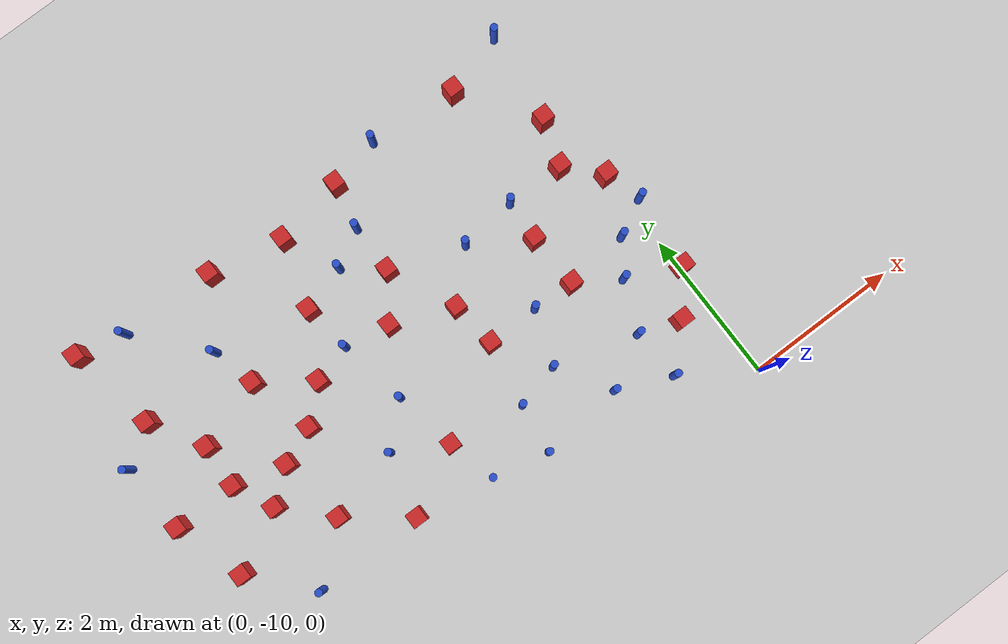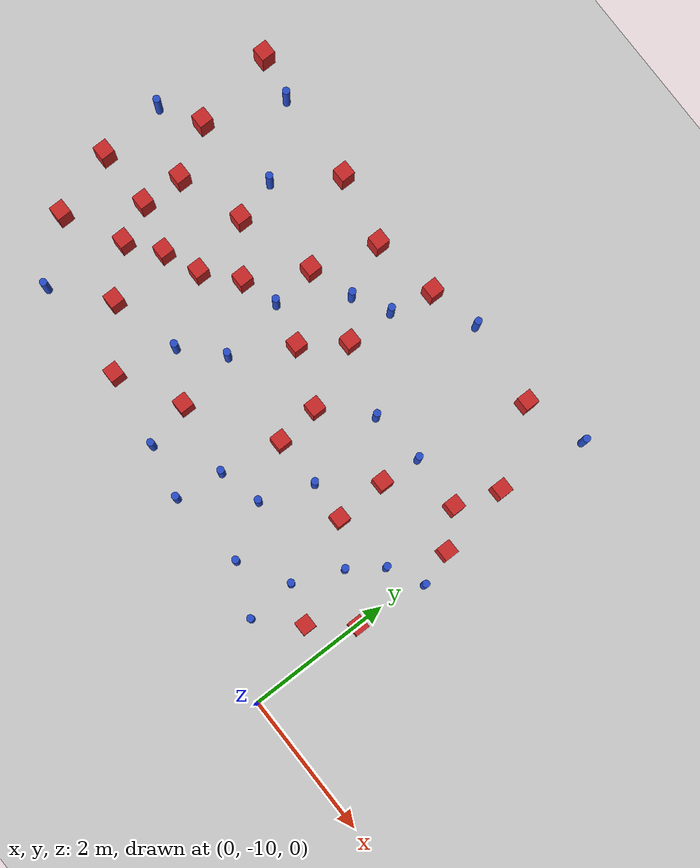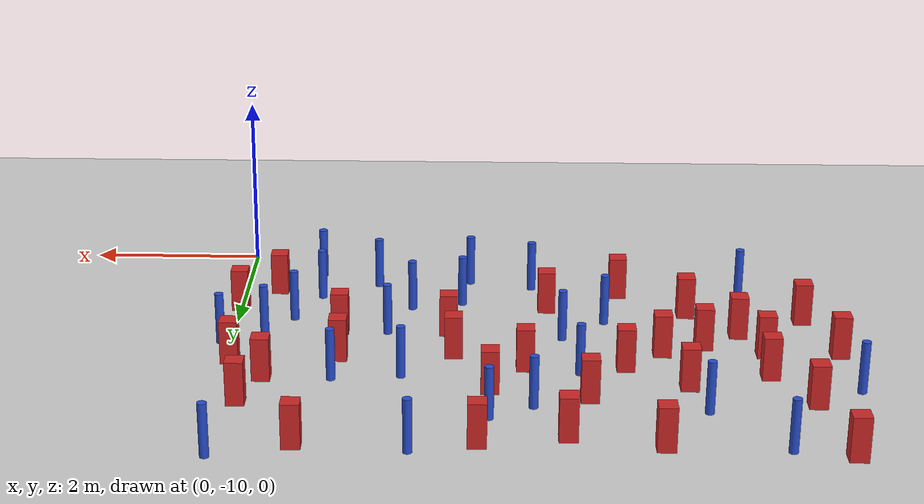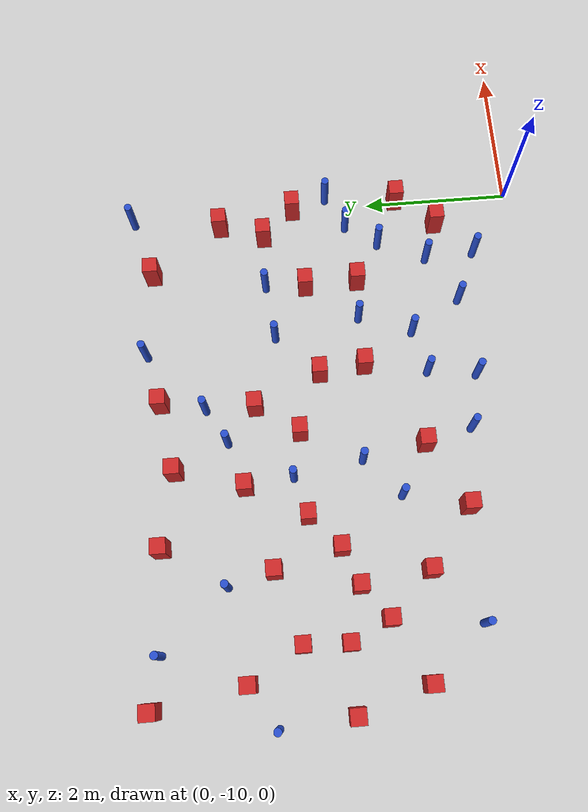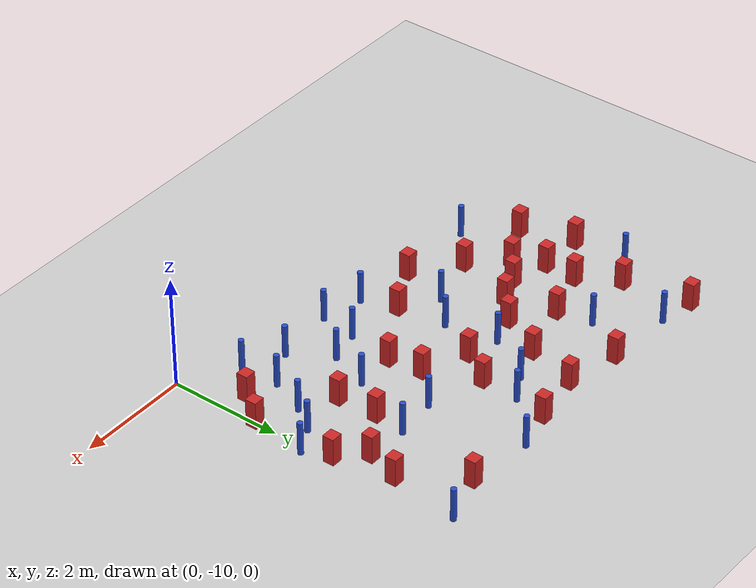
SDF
<sdf version="1.6">
 <world name="default">
  <model name="ground_plane">
   <static>1</static>
   <link name="link">
    <collision name="collision">
     <geometry><plane><normal>0 0 1</normal><size>100 100</size></plane></geometry>
     <surface><friction><ode><mu>100</mu><mu2>50</mu2></ode></friction></surface>
    </collision>
    <visual name="visual">
     <cast_shadows>0</cast_shadows>
     <geometry><plane><normal>0 0 1</normal><size>100 100</size></plane></geometry>
     <material>
      <ambient>1.0 1.0 1.0 1.0</ambient>
      <diffuse>0.8 0.8 0.8 1.0</diffuse>
      <specular>0.01 0.01 0.01 1.000000</specular>
     </material>
    </visual>
   </link>
  </model>
  <model name="square_post_obstacle0">
   <static>true</static>
   <pose>-4.84139513714 -7.20831380337 1.91545236811e-07 -7.35059704564e-06 1.12565212e-07 2.39332434364e-05</pose>
   <link name="link">
    <pose>0 0 0.25 0 -0 0</pose>
    <inertial>
     <mass>100</mass>
     <inertia>
      <ixx>0.166667</ixx>
      <ixy>0</ixy>
      <ixz>0</ixz>
      <iyy>0.166667</iyy>
      <iyz>0</iyz>
      <izz>0.166667</izz>
     </inertia>
    </inertial>
    <collision name="collision"><geometry><box><size>.2 .2 .5</size></box></geometry></collision>
    <visual name="visual">
     <geometry><box><size>.2 .2 .5</size></box></geometry>
     <material>
      <script><name>Gazebo/Red</name><uri>file://media/materials/scripts/gazebo.material</uri></script>
     </material>
    </visual>
   </link>
  </model>
  <model name="pole_obstacle5">
   <static>true</static>
   <pose>0.122949618558 -7.40408412698 7.38925637345e-09 -8.47170692799e-08 1.2497676504e-08 -1.74513093019e-07</pose>
   <link name="link">
    <pose>0 0 0.3 0 -0 0</pose>
    <inertial>
     <mass>1</mass>
     <inertia><ixx>0.145833</ixx><ixy>0</ixy><ixz>0</ixz><iyy>0.145833</iyy><iyz>0</iyz><izz>0.125</izz></inertia>
    </inertial>
    <collision name="collision">
     <geometry><cylinder><radius>0.05</radius><length>.6</length></cylinder></geometry>
    </collision>
    <visual name="visual">
     <geometry><cylinder><radius>0.05</radius><length>.6</length></cylinder></geometry>
     <material>
      <script><name>Gazebo/Blue</name><uri>file://media/materials/scripts/gazebo.material</uri></script>
     </material>
    </visual>
   </link>
  </model>
  <model name="pole_obstacle13">
   <static>true</static>
   <pose>-3.74267223954 -7.58555158049 7.38925637345e-09 -8.47170692794e-08 1.24976764468e-08 -1.7451309304e-07</pose>
   <link name="link">
    <pose>0 0 0.3 0 -0 0</pose>
    <inertial>
     <mass>1</mass>
     <inertia><ixx>0.145833</ixx><ixy>0</ixy><ixz>0</ixz><iyy>0.145833</iyy><iyz>0</iyz><izz>0.125</izz></inertia>
    </inertial>
    <collision name="collision">
     <geometry><cylinder><radius>0.05</radius><length>.6</length></cylinder></geometry>
    </collision>
    <visual name="visual">
     <geometry><cylinder><radius>0.05</radius><length>.6</length></cylinder></geometry>
     <material>
      <script><name>Gazebo/Blue</name><uri>file://media/materials/scripts/gazebo.material</uri></script>
     </material>
    </visual>
   </link>
  </model>
  <model name="pole_obstacle22">
   <static>true</static>
   <pose>-2.91029246065 -5.57500452506 7.38925637345e-09 -8.47170692798e-08 1.24976765033e-08 -1.74513093019e-07</pose>
   <link name="link">
    <pose>0 0 0.3 0 -0 0</pose>
    <inertial>
     <mass>1</mass>
     <inertia><ixx>0.145833</ixx><ixy>0</ixy><ixz>0</ixz><iyy>0.145833</iyy><iyz>0</iyz><izz>0.125</izz></inertia>
    </inertial>
    <collision name="collision">
     <geometry><cylinder><radius>0.05</radius><length>.6</length></cylinder></geometry>
    </collision>
    <visual name="visual">
     <geometry><cylinder><radius>0.05</radius><length>.6</length></cylinder></geometry>
     <material>
      <script><name>Gazebo/Blue</name><uri>file://media/materials/scripts/gazebo.material</uri></script>
     </material>
    </visual>
   </link>
  </model>
  <model name="pole_obstacle23">
   <static>true</static>
   <pose>-0.890442767899 -9.41216374775 7.38925637345e-09 -8.47170692797e-08 1.249767648e-08 -1.74513093032e-07</pose>
   <link name="link">
    <pose>0 0 0.3 0 -0 0</pose>
    <inertial>
     <mass>1</mass>
     <inertia><ixx>0.145833</ixx><ixy>0</ixy><ixz>0</ixz><iyy>0.145833</iyy><iyz>0</iyz><izz>0.125</izz></inertia>
    </inertial>
    <collision name="collision">
     <geometry><cylinder><radius>0.05</radius><length>.6</length></cylinder></geometry>
    </collision>
    <visual name="visual">
     <geometry><cylinder><radius>0.05</radius><length>.6</length></cylinder></geometry>
     <material>
      <script><name>Gazebo/Blue</name><uri>file://media/materials/scripts/gazebo.material</uri></script>
     </material>
    </visual>
   </link>
  </model>
  <model name="square_post_obstacle21">
   <static>true</static>
   <pose>-6.37459272329 -5.96504815484 1.91545236811e-07 -7.35059704564e-06 1.12565212e-07 2.39332434364e-05</pose>
   <link name="link">
    <pose>0 0 0.25 0 -0 0</pose>
    <inertial>
     <mass>100</mass>
     <inertia>
      <ixx>0.166667</ixx>
      <ixy>0</ixy>
      <ixz>0</ixz>
      <iyy>0.166667</iyy>
      <iyz>0</iyz>
      <izz>0.166667</izz>
     </inertia>
    </inertial>
    <collision name="collision"><geometry><box><size>.2 .2 .5</size></box></geometry></collision>
    <visual name="visual">
     <geometry><box><size>.2 .2 .5</size></box></geometry>
     <material>
      <script><name>Gazebo/Red</name><uri>file://media/materials/scripts/gazebo.material</uri></script>
     </material>
    </visual>
   </link>
  </model>
  <model name="square_post_obstacle25">
   <static>true</static>
   <pose>-0.234538740479 -5.88978600443 1.91545236811e-07 -7.35059704564e-06 1.12565212e-07 2.39332434364e-05</pose>
   <link name="link">
    <pose>0 0 0.25 0 -0 0</pose>
    <inertial>
     <mass>100</mass>
     <inertia>
      <ixx>0.166667</ixx>
      <ixy>0</ixy>
      <ixz>0</ixz>
      <iyy>0.166667</iyy>
      <iyz>0</iyz>
      <izz>0.166667</izz>
     </inertia>
    </inertial>
    <collision name="collision"><geometry><box><size>.2 .2 .5</size></box></geometry></collision>
    <visual name="visual">
     <geometry><box><size>.2 .2 .5</size></box></geometry>
     <material>
      <script><name>Gazebo/Red</name><uri>file://media/materials/scripts/gazebo.material</uri></script>
     </material>
    </visual>
   </link>
  </model>
  <model name="pole_obstacle41">
   <static>true</static>
   <pose>-4.24276066997 -8.04944126712 7.38925637345e-09 -8.47170692796e-08 1.24976764734e-08 -1.74513093037e-07</pose>
   <link name="link">
    <pose>0 0 0.3 0 -0 0</pose>
    <inertial>
     <mass>1</mass>
     <inertia><ixx>0.145833</ixx><ixy>0</ixy><ixz>0</ixz><iyy>0.145833</iyy><iyz>0</iyz><izz>0.125</izz></inertia>
    </inertial>
    <collision name="collision">
     <geometry><cylinder><radius>0.05</radius><length>.6</length></cylinder></geometry>
    </collision>
    <visual name="visual">
     <geometry><cylinder><radius>0.05</radius><length>.6</length></cylinder></geometry>
     <material>
      <script><name>Gazebo/Blue</name><uri>file://media/materials/scripts/gazebo.material</uri></script>
     </material>
    </visual>
   </link>
  </model>
  <model name="pole_obstacle42">
   <static>true</static>
   <pose>-3.42319173039 -9.05376621571 7.38925637345e-09 -8.47170692793e-08 1.24976764408e-08 -1.74513093041e-07</pose>
   <link name="link">
    <pose>0 0 0.3 0 -0 0</pose>
    <inertial>
     <mass>1</mass>
     <inertia><ixx>0.145833</ixx><ixy>0</ixy><ixz>0</ixz><iyy>0.145833</iyy><iyz>0</iyz><izz>0.125</izz></inertia>
    </inertial>
    <collision name="collision">
     <geometry><cylinder><radius>0.05</radius><length>.6</length></cylinder></geometry>
    </collision>
    <visual name="visual">
     <geometry><cylinder><radius>0.05</radius><length>.6</length></cylinder></geometry>
     <material>
      <script><name>Gazebo/Blue</name><uri>file://media/materials/scripts/gazebo.material</uri></script>
     </material>
    </visual>
   </link>
  </model>
  <model name="square_post_obstacle34">
   <static>true</static>
   <pose>-5.74695221369 -7.73323091763 1.91545236811e-07 -7.35059704564e-06 1.12565212e-07 2.39332434364e-05</pose>
   <link name="link">
    <pose>0 0 0.25 0 -0 0</pose>
    <inertial>
     <mass>100</mass>
     <inertia>
      <ixx>0.166667</ixx>
      <ixy>0</ixy>
      <ixz>0</ixz>
      <iyy>0.166667</iyy>
      <iyz>0</iyz>
      <izz>0.166667</izz>
     </inertia>
    </inertial>
    <collision name="collision"><geometry><box><size>.2 .2 .5</size></box></geometry></collision>
    <visual name="visual">
     <geometry><box><size>.2 .2 .5</size></box></geometry>
     <material>
      <script><name>Gazebo/Red</name><uri>file://media/materials/scripts/gazebo.material</uri></script>
     </material>
    </visual>
   </link>
  </model>
  <model name="pole_obstacle44">
   <static>true</static>
   <pose>-1.58929390108 -9.11141644523 7.38925637345e-09 -8.47170692798e-08 1.24976764881e-08 -1.74513093027e-07</pose>
   <link name="link">
    <pose>0 0 0.3 0 -0 0</pose>
    <inertial>
     <mass>1</mass>
     <inertia><ixx>0.145833</ixx><ixy>0</ixy><ixz>0</ixz><iyy>0.145833</iyy><iyz>0</iyz><izz>0.125</izz></inertia>
    </inertial>
    <collision name="collision">
     <geometry><cylinder><radius>0.05</radius><length>.6</length></cylinder></geometry>
    </collision>
    <visual name="visual">
     <geometry><cylinder><radius>0.05</radius><length>.6</length></cylinder></geometry>
     <material>
      <script><name>Gazebo/Blue</name><uri>file://media/materials/scripts/gazebo.material</uri></script>
     </material>
    </visual>
   </link>
  </model>
  <model name="square_post_obstacle46">
   <static>true</static>
   <pose>-1.23906364072 -7.02247748256 1.91545236811e-07 -7.35059704564e-06 1.12565212e-07 2.39332434364e-05</pose>
   <link name="link">
    <pose>0 0 0.25 0 -0 0</pose>
    <inertial>
     <mass>100</mass>
     <inertia>
      <ixx>0.166667</ixx>
      <ixy>0</ixy>
      <ixz>0</ixz>
      <iyy>0.166667</iyy>
      <iyz>0</iyz>
      <izz>0.166667</izz>
     </inertia>
    </inertial>
    <collision name="collision"><geometry><box><size>.2 .2 .5</size></box></geometry></collision>
    <visual name="visual">
     <geometry><box><size>.2 .2 .5</size></box></geometry>
     <material>
      <script><name>Gazebo/Red</name><uri>file://media/materials/scripts/gazebo.material</uri></script>
     </material>
    </visual>
   </link>
  </model>
  <model name="square_post_obstacle49">
   <static>true</static>
   <pose>-5.06486607134 -6.35280239748 1.91545236811e-07 -7.35059704564e-06 1.12565212e-07 2.39332434364e-05</pose>
   <link name="link">
    <pose>0 0 0.25 0 -0 0</pose>
    <inertial>
     <mass>100</mass>
     <inertia>
      <ixx>0.166667</ixx>
      <ixy>0</ixy>
      <ixz>0</ixz>
      <iyy>0.166667</iyy>
      <iyz>0</iyz>
      <izz>0.166667</izz>
     </inertia>
    </inertial>
    <collision name="collision"><geometry><box><size>.2 .2 .5</size></box></geometry></collision>
    <visual name="visual">
     <geometry><box><size>.2 .2 .5</size></box></geometry>
     <material>
      <script><name>Gazebo/Red</name><uri>file://media/materials/scripts/gazebo.material</uri></script>
     </material>
    </visual>
   </link>
  </model>
  <model name="pole_obstacle66">
   <static>true</static>
   <pose>-2.60039056792 -8.56902993173 7.38925637345e-09 -8.47170692793e-08 1.24976764408e-08 -1.74513093041e-07</pose>
   <link name="link">
    <pose>0 0 0.3 0 -0 0</pose>
    <inertial>
     <mass>1</mass>
     <inertia><ixx>0.145833</ixx><ixy>0</ixy><ixz>0</ixz><iyy>0.145833</iyy><iyz>0</iyz><izz>0.125</izz></inertia>
    </inertial>
    <collision name="collision">
     <geometry><cylinder><radius>0.05</radius><length>.6</length></cylinder></geometry>
    </collision>
    <visual name="visual">
     <geometry><cylinder><radius>0.05</radius><length>.6</length></cylinder></geometry>
     <material>
      <script><name>Gazebo/Blue</name><uri>file://media/materials/scripts/gazebo.material</uri></script>
     </material>
    </visual>
   </link>
  </model>
  <model name="square_post_obstacle53">
   <static>true</static>
   <pose>-5.20208092043 -8.29713924937 1.91545236811e-07 -7.35059704564e-06 1.12565212e-07 2.39332434364e-05</pose>
   <link name="link">
    <pose>0 0 0.25 0 -0 0</pose>
    <inertial>
     <mass>100</mass>
     <inertia>
      <ixx>0.166667</ixx>
      <ixy>0</ixy>
      <ixz>0</ixz>
      <iyy>0.166667</iyy>
      <iyz>0</iyz>
      <izz>0.166667</izz>
     </inertia>
    </inertial>
    <collision name="collision"><geometry><box><size>.2 .2 .5</size></box></geometry></collision>
    <visual name="visual">
     <geometry><box><size>.2 .2 .5</size></box></geometry>
     <material>
      <script><name>Gazebo/Red</name><uri>file://media/materials/scripts/gazebo.material</uri></script>
     </material>
    </visual>
   </link>
  </model>
  <model name="square_post_obstacle62">
   <static>true</static>
   <pose>-6.58231786967 -4.79509380985 1.91545236811e-07 -7.35059704564e-06 1.12565212e-07 2.39332434364e-05</pose>
   <link name="link">
    <pose>0 0 0.25 0 -0 0</pose>
    <inertial>
     <mass>100</mass>
     <inertia>
      <ixx>0.166667</ixx>
      <ixy>0</ixy>
      <ixz>0</ixz>
      <iyy>0.166667</iyy>
      <iyz>0</iyz>
      <izz>0.166667</izz>
     </inertia>
    </inertial>
    <collision name="collision"><geometry><box><size>.2 .2 .5</size></box></geometry></collision>
    <visual name="visual">
     <geometry><box><size>.2 .2 .5</size></box></geometry>
     <material>
      <script><name>Gazebo/Red</name><uri>file://media/materials/scripts/gazebo.material</uri></script>
     </material>
    </visual>
   </link>
  </model>
  <model name="pole_obstacle74">
   <static>true</static>
   <pose>-1.95495482036 -6.55999905557 7.38925637345e-09 -8.47170692799e-08 1.2497676507e-08 -1.74513093016e-07</pose>
   <link name="link">
    <pose>0 0 0.3 0 -0 0</pose>
    <inertial>
     <mass>1</mass>
     <inertia><ixx>0.145833</ixx><ixy>0</ixy><ixz>0</ixz><iyy>0.145833</iyy><iyz>0</iyz><izz>0.125</izz></inertia>
    </inertial>
    <collision name="collision">
     <geometry><cylinder><radius>0.05</radius><length>.6</length></cylinder></geometry>
    </collision>
    <visual name="visual">
     <geometry><cylinder><radius>0.05</radius><length>.6</length></cylinder></geometry>
     <material>
      <script><name>Gazebo/Blue</name><uri>file://media/materials/scripts/gazebo.material</uri></script>
     </material>
    </visual>
   </link>
  </model>
  <model name="square_post_obstacle65">
   <static>true</static>
   <pose>-3.58632804075 -8.41804204437 1.91545236811e-07 -7.35059704564e-06 1.12565212e-07 2.39332434364e-05</pose>
   <link name="link">
    <pose>0 0 0.25 0 -0 0</pose>
    <inertial>
     <mass>100</mass>
     <inertia>
      <ixx>0.166667</ixx>
      <ixy>0</ixy>
      <ixz>0</ixz>
      <iyy>0.166667</iyy>
      <iyz>0</iyz>
      <izz>0.166667</izz>
     </inertia>
    </inertial>
    <collision name="collision"><geometry><box><size>.2 .2 .5</size></box></geometry></collision>
    <visual name="visual">
     <geometry><box><size>.2 .2 .5</size></box></geometry>
     <material>
      <script><name>Gazebo/Red</name><uri>file://media/materials/scripts/gazebo.material</uri></script>
     </material>
    </visual>
   </link>
  </model>
  <model name="pole_obstacle78">
   <static>true</static>
   <pose>-0.0718494306639 -4.6658064263 7.38925637345e-09 -8.471706928e-08 1.24976765084e-08 -1.74513093017e-07</pose>
   <link name="link">
    <pose>0 0 0.3 0 -0 0</pose>
    <inertial>
     <mass>1</mass>
     <inertia><ixx>0.145833</ixx><ixy>0</ixy><ixz>0</ixz><iyy>0.145833</iyy><iyz>0</iyz><izz>0.125</izz></inertia>
    </inertial>
    <collision name="collision">
     <geometry><cylinder><radius>0.05</radius><length>.6</length></cylinder></geometry>
    </collision>
    <visual name="visual">
     <geometry><cylinder><radius>0.05</radius><length>.6</length></cylinder></geometry>
     <material>
      <script><name>Gazebo/Blue</name><uri>file://media/materials/scripts/gazebo.material</uri></script>
     </material>
    </visual>
   </link>
  </model>
  <model name="square_post_obstacle71">
   <static>true</static>
   <pose>-6.81924303917 -7.22291895995 1.91545236811e-07 -7.35059704564e-06 1.12565212e-07 2.39332434364e-05</pose>
   <link name="link">
    <pose>0 0 0.25 0 -0 0</pose>
    <inertial>
     <mass>100</mass>
     <inertia>
      <ixx>0.166667</ixx>
      <ixy>0</ixy>
      <ixz>0</ixz>
      <iyy>0.166667</iyy>
      <iyz>0</iyz>
      <izz>0.166667</izz>
     </inertia>
    </inertial>
    <collision name="collision"><geometry><box><size>.2 .2 .5</size></box></geometry></collision>
    <visual name="visual">
     <geometry><box><size>.2 .2 .5</size></box></geometry>
     <material>
      <script><name>Gazebo/Red</name><uri>file://media/materials/scripts/gazebo.material</uri></script>
     </material>
    </visual>
   </link>
  </model>
  <model name="pole_obstacle83">
   <static>true</static>
   <pose>-2.0945225241 -4.81393313526 7.38925637345e-09 -8.47170692798e-08 1.24976765033e-08 -1.74513093019e-07</pose>
   <link name="link">
    <pose>0 0 0.3 0 -0 0</pose>
    <inertial>
     <mass>1</mass>
     <inertia><ixx>0.145833</ixx><ixy>0</ixy><ixz>0</ixz><iyy>0.145833</iyy><iyz>0</iyz><izz>0.125</izz></inertia>
    </inertial>
    <collision name="collision">
     <geometry><cylinder><radius>0.05</radius><length>.6</length></cylinder></geometry>
    </collision>
    <visual name="visual">
     <geometry><cylinder><radius>0.05</radius><length>.6</length></cylinder></geometry>
     <material>
      <script><name>Gazebo/Blue</name><uri>file://media/materials/scripts/gazebo.material</uri></script>
     </material>
    </visual>
   </link>
  </model>
  <model name="pole_obstacle84">
   <static>true</static>
   <pose>-0.931559531788 -8.73627444797 7.38925637345e-09 -8.47170692797e-08 1.249767648e-08 -1.74513093032e-07</pose>
   <link name="link">
    <pose>0 0 0.3 0 -0 0</pose>
    <inertial>
     <mass>1</mass>
     <inertia><ixx>0.145833</ixx><ixy>0</ixy><ixz>0</ixz><iyy>0.145833</iyy><iyz>0</iyz><izz>0.125</izz></inertia>
    </inertial>
    <collision name="collision">
     <geometry><cylinder><radius>0.05</radius><length>.6</length></cylinder></geometry>
    </collision>
    <visual name="visual">
     <geometry><cylinder><radius>0.05</radius><length>.6</length></cylinder></geometry>
     <material>
      <script><name>Gazebo/Blue</name><uri>file://media/materials/scripts/gazebo.material</uri></script>
     </material>
    </visual>
   </link>
  </model>
  <model name="square_post_obstacle73">
   <static>true</static>
   <pose>0.00863385165725 -8.39363464653 1.91545236811e-07 -7.35059704564e-06 1.12565212e-07 2.39332434364e-05</pose>
   <link name="link">
    <pose>0 0 0.25 0 -0 0</pose>
    <inertial>
     <mass>100</mass>
     <inertia>
      <ixx>0.166667</ixx>
      <ixy>0</ixy>
      <ixz>0</ixz>
      <iyy>0.166667</iyy>
      <iyz>0</iyz>
      <izz>0.166667</izz>
     </inertia>
    </inertial>
    <collision name="collision"><geometry><box><size>.2 .2 .5</size></box></geometry></collision>
    <visual name="visual">
     <geometry><box><size>.2 .2 .5</size></box></geometry>
     <material>
      <script><name>Gazebo/Red</name><uri>file://media/materials/scripts/gazebo.material</uri></script>
     </material>
    </visual>
   </link>
  </model>
  <model name="square_post_obstacle74">
   <static>true</static>
   <pose>-2.45104831673 -7.72431145352 1.91545236811e-07 -7.35059704564e-06 1.12565212e-07 2.39332434364e-05</pose>
   <link name="link">
    <pose>0 0 0.25 0 -0 0</pose>
    <inertial>
     <mass>100</mass>
     <inertia>
      <ixx>0.166667</ixx>
      <ixy>0</ixy>
      <ixz>0</ixz>
      <iyy>0.166667</iyy>
      <iyz>0</iyz>
      <izz>0.166667</izz>
     </inertia>
    </inertial>
    <collision name="collision"><geometry><box><size>.2 .2 .5</size></box></geometry></collision>
    <visual name="visual">
     <geometry><box><size>.2 .2 .5</size></box></geometry>
     <material>
      <script><name>Gazebo/Red</name><uri>file://media/materials/scripts/gazebo.material</uri></script>
     </material>
    </visual>
   </link>
  </model>
  <model name="square_post_obstacle76">
   <static>true</static>
   <pose>-3.30991116825 -6.79965427455 1.91545236811e-07 -7.35059704564e-06 1.12565212e-07 2.39332434364e-05</pose>
   <link name="link">
    <pose>0 0 0.25 0 -0 0</pose>
    <inertial>
     <mass>100</mass>
     <inertia>
      <ixx>0.166667</ixx>
      <ixy>0</ixy>
      <ixz>0</ixz>
      <iyy>0.166667</iyy>
      <iyz>0</iyz>
      <izz>0.166667</izz>
     </inertia>
    </inertial>
    <collision name="collision"><geometry><box><size>.2 .2 .5</size></box></geometry></collision>
    <visual name="visual">
     <geometry><box><size>.2 .2 .5</size></box></geometry>
     <material>
      <script><name>Gazebo/Red</name><uri>file://media/materials/scripts/gazebo.material</uri></script>
     </material>
    </visual>
   </link>
  </model>
  <model name="square_post_obstacle77">
   <static>true</static>
   <pose>-0.438409245216 -6.49309305117 1.91545236811e-07 -7.35059704564e-06 1.12565212e-07 2.39332434364e-05</pose>
   <link name="link">
    <pose>0 0 0.25 0 -0 0</pose>
    <inertial>
     <mass>100</mass>
     <inertia>
      <ixx>0.166667</ixx>
      <ixy>0</ixy>
      <ixz>0</ixz>
      <iyy>0.166667</iyy>
      <iyz>0</iyz>
      <izz>0.166667</izz>
     </inertia>
    </inertial>
    <collision name="collision"><geometry><box><size>.2 .2 .5</size></box></geometry></collision>
    <visual name="visual">
     <geometry><box><size>.2 .2 .5</size></box></geometry>
     <material>
      <script><name>Gazebo/Red</name><uri>file://media/materials/scripts/gazebo.material</uri></script>
     </material>
    </visual>
   </link>
  </model>
  <model name="square_post_obstacle86">
   <static>true</static>
   <pose>-2.51966905509 -7.11843420255 1.91545236811e-07 -7.35059704564e-06 1.12565212e-07 2.39332434364e-05</pose>
   <link name="link">
    <pose>0 0 0.25 0 -0 0</pose>
    <inertial>
     <mass>100</mass>
     <inertia>
      <ixx>0.166667</ixx>
      <ixy>0</ixy>
      <ixz>0</ixz>
      <iyy>0.166667</iyy>
      <iyz>0</iyz>
      <izz>0.166667</izz>
     </inertia>
    </inertial>
    <collision name="collision"><geometry><box><size>.2 .2 .5</size></box></geometry></collision>
    <visual name="visual">
     <geometry><box><size>.2 .2 .5</size></box></geometry>
     <material>
      <script><name>Gazebo/Red</name><uri>file://media/materials/scripts/gazebo.material</uri></script>
     </material>
    </visual>
   </link>
  </model>
  <model name="square_post_obstacle87">
   <static>true</static>
   <pose>-0.916351282907 -4.92907743124 1.91545236811e-07 -7.35059704564e-06 1.12565212e-07 2.39332434364e-05</pose>
   <link name="link">
    <pose>0 0 0.25 0 -0 0</pose>
    <inertial>
     <mass>100</mass>
     <inertia>
      <ixx>0.166667</ixx>
      <ixy>0</ixy>
      <ixz>0</ixz>
      <iyy>0.166667</iyy>
      <iyz>0</iyz>
      <izz>0.166667</izz>
     </inertia>
    </inertial>
    <collision name="collision"><geometry><box><size>.2 .2 .5</size></box></geometry></collision>
    <visual name="visual">
     <geometry><box><size>.2 .2 .5</size></box></geometry>
     <material>
      <script><name>Gazebo/Red</name><uri>file://media/materials/scripts/gazebo.material</uri></script>
     </material>
    </visual>
   </link>
  </model>
  <model name="square_post_obstacle96">
   <static>true</static>
   <pose>-4.69256893084 -4.95758312344 1.91545236811e-07 -7.35059704564e-06 1.12565212e-07 2.39332434364e-05</pose>
   <link name="link">
    <pose>0 0 0.25 0 -0 0</pose>
    <inertial>
     <mass>100</mass>
     <inertia>
      <ixx>0.166667</ixx>
      <ixy>0</ixy>
      <ixz>0</ixz>
      <iyy>0.166667</iyy>
      <iyz>0</iyz>
      <izz>0.166667</izz>
     </inertia>
    </inertial>
    <collision name="collision"><geometry><box><size>.2 .2 .5</size></box></geometry></collision>
    <visual name="visual">
     <geometry><box><size>.2 .2 .5</size></box></geometry>
     <material>
      <script><name>Gazebo/Red</name><uri>file://media/materials/scripts/gazebo.material</uri></script>
     </material>
    </visual>
   </link>
  </model>
  <model name="pole_obstacle104">
   <static>true</static>
   <pose>-5.96292479428 -4.91091737174 7.38925637345e-09 -8.47170692796e-08 1.24976764786e-08 -1.74513093032e-07</pose>
   <link name="link">
    <pose>0 0 0.3 0 -0 0</pose>
    <inertial>
     <mass>1</mass>
     <inertia><ixx>0.145833</ixx><ixy>0</ixy><ixz>0</ixz><iyy>0.145833</iyy><iyz>0</iyz><izz>0.125</izz></inertia>
    </inertial>
    <collision name="collision">
     <geometry><cylinder><radius>0.05</radius><length>.6</length></cylinder></geometry>
    </collision>
    <visual name="visual">
     <geometry><cylinder><radius>0.05</radius><length>.6</length></cylinder></geometry>
     <material>
      <script><name>Gazebo/Blue</name><uri>file://media/materials/scripts/gazebo.material</uri></script>
     </material>
    </visual>
   </link>
  </model>
  <model name="square_post_obstacle103">
   <static>true</static>
   <pose>-5.99349448384 -7.21813110808 1.91545236811e-07 -7.35059704564e-06 1.12565212e-07 2.39332434364e-05</pose>
   <link name="link">
    <pose>0 0 0.25 0 -0 0</pose>
    <inertial>
     <mass>100</mass>
     <inertia>
      <ixx>0.166667</ixx>
      <ixy>0</ixy>
      <ixz>0</ixz>
      <iyy>0.166667</iyy>
      <iyz>0</iyz>
      <izz>0.166667</izz>
     </inertia>
    </inertial>
    <collision name="collision"><geometry><box><size>.2 .2 .5</size></box></geometry></collision>
    <visual name="visual">
     <geometry><box><size>.2 .2 .5</size></box></geometry>
     <material>
      <script><name>Gazebo/Red</name><uri>file://media/materials/scripts/gazebo.material</uri></script>
     </material>
    </visual>
   </link>
  </model>
  <model name="pole_obstacle124">
   <static>true</static>
   <pose>-1.19570182627 -6.47589309377 7.38925637345e-09 -8.47170692799e-08 1.24976765033e-08 -1.74513093018e-07</pose>
   <link name="link">
    <pose>0 0 0.3 0 -0 0</pose>
    <inertial>
     <mass>1</mass>
     <inertia><ixx>0.145833</ixx><ixy>0</ixy><ixz>0</ixz><iyy>0.145833</iyy><iyz>0</iyz><izz>0.125</izz></inertia>
    </inertial>
    <collision name="collision">
     <geometry><cylinder><radius>0.05</radius><length>.6</length></cylinder></geometry>
    </collision>
    <visual name="visual">
     <geometry><cylinder><radius>0.05</radius><length>.6</length></cylinder></geometry>
     <material>
      <script><name>Gazebo/Blue</name><uri>file://media/materials/scripts/gazebo.material</uri></script>
     </material>
    </visual>
   </link>
  </model>
  <model name="pole_obstacle136">
   <static>true</static>
   <pose>-1.75473031462 -7.71321962101 7.38925637345e-09 -8.47170692799e-08 1.24976765033e-08 -1.74513093018e-07</pose>
   <link name="link">
    <pose>0 0 0.3 0 -0 0</pose>
    <inertial>
     <mass>1</mass>
     <inertia><ixx>0.145833</ixx><ixy>0</ixy><ixz>0</ixz><iyy>0.145833</iyy><iyz>0</iyz><izz>0.125</izz></inertia>
    </inertial>
    <collision name="collision">
     <geometry><cylinder><radius>0.05</radius><length>.6</length></cylinder></geometry>
    </collision>
    <visual name="visual">
     <geometry><cylinder><radius>0.05</radius><length>.6</length></cylinder></geometry>
     <material>
      <script><name>Gazebo/Blue</name><uri>file://media/materials/scripts/gazebo.material</uri></script>
     </material>
    </visual>
   </link>
  </model>
  <model name="pole_obstacle141">
   <static>true</static>
   <pose>-5.89118413032 -8.88382159089 7.38925637345e-09 -8.471706928e-08 1.24976765081e-08 -1.74513093015e-07</pose>
   <link name="link">
    <pose>0 0 0.3 0 -0 0</pose>
    <inertial>
     <mass>1</mass>
     <inertia><ixx>0.145833</ixx><ixy>0</ixy><ixz>0</ixz><iyy>0.145833</iyy><iyz>0</iyz><izz>0.125</izz></inertia>
    </inertial>
    <collision name="collision">
     <geometry><cylinder><radius>0.05</radius><length>.6</length></cylinder></geometry>
    </collision>
    <visual name="visual">
     <geometry><cylinder><radius>0.05</radius><length>.6</length></cylinder></geometry>
     <material>
      <script><name>Gazebo/Blue</name><uri>file://media/materials/scripts/gazebo.material</uri></script>
     </material>
    </visual>
   </link>
  </model>
  <model name="square_post_obstacle138">
   <static>true</static>
   <pose>-1.20937385949 -7.73840611678 1.91545236811e-07 -7.35059704564e-06 1.12565212e-07 2.39332434364e-05</pose>
   <link name="link">
    <pose>0 0 0.25 0 -0 0</pose>
    <inertial>
     <mass>100</mass>
     <inertia>
      <ixx>0.166667</ixx>
      <ixy>0</ixy>
      <ixz>0</ixz>
      <iyy>0.166667</iyy>
      <iyz>0</iyz>
      <izz>0.166667</izz>
     </inertia>
    </inertial>
    <collision name="collision"><geometry><box><size>.2 .2 .5</size></box></geometry></collision>
    <visual name="visual">
     <geometry><box><size>.2 .2 .5</size></box></geometry>
     <material>
      <script><name>Gazebo/Red</name><uri>file://media/materials/scripts/gazebo.material</uri></script>
     </material>
    </visual>
   </link>
  </model>
  <model name="pole_obstacle142">
   <static>true</static>
   <pose>-3.90574404845 -6.67453424794 7.38925637345e-09 -8.47170692794e-08 1.24976764468e-08 -1.7451309304e-07</pose>
   <link name="link">
    <pose>0 0 0.3 0 -0 0</pose>
    <inertial>
     <mass>1</mass>
     <inertia><ixx>0.145833</ixx><ixy>0</ixy><ixz>0</ixz><iyy>0.145833</iyy><iyz>0</iyz><izz>0.125</izz></inertia>
    </inertial>
    <collision name="collision">
     <geometry><cylinder><radius>0.05</radius><length>.6</length></cylinder></geometry>
    </collision>
    <visual name="visual">
     <geometry><cylinder><radius>0.05</radius><length>.6</length></cylinder></geometry>
     <material>
      <script><name>Gazebo/Blue</name><uri>file://media/materials/scripts/gazebo.material</uri></script>
     </material>
    </visual>
   </link>
  </model>
  <model name="square_post_obstacle150">
   <static>true</static>
   <pose>-3.98250178729 -6.04692395856 1.91545236811e-07 -7.35059704564e-06 1.12565212e-07 2.39332434364e-05</pose>
   <link name="link">
    <pose>0 0 0.25 0 -0 0</pose>
    <inertial>
     <mass>100</mass>
     <inertia>
      <ixx>0.166667</ixx>
      <ixy>0</ixy>
      <ixz>0</ixz>
      <iyy>0.166667</iyy>
      <iyz>0</iyz>
      <izz>0.166667</izz>
     </inertia>
    </inertial>
    <collision name="collision"><geometry><box><size>.2 .2 .5</size></box></geometry></collision>
    <visual name="visual">
     <geometry><box><size>.2 .2 .5</size></box></geometry>
     <material>
      <script><name>Gazebo/Red</name><uri>file://media/materials/scripts/gazebo.material</uri></script>
     </material>
    </visual>
   </link>
  </model>
  <model name="pole_obstacle162">
   <static>true</static>
   <pose>-5.21895267942 -5.76056451849 7.38925637345e-09 -8.47170692796e-08 1.24976764786e-08 -1.74513093032e-07</pose>
   <link name="link">
    <pose>0 0 0.3 0 -0 0</pose>
    <inertial>
     <mass>1</mass>
     <inertia><ixx>0.145833</ixx><ixy>0</ixy><ixz>0</ixz><iyy>0.145833</iyy><iyz>0</iyz><izz>0.125</izz></inertia>
    </inertial>
    <collision name="collision">
     <geometry><cylinder><radius>0.05</radius><length>.6</length></cylinder></geometry>
    </collision>
    <visual name="visual">
     <geometry><cylinder><radius>0.05</radius><length>.6</length></cylinder></geometry>
     <material>
      <script><name>Gazebo/Blue</name><uri>file://media/materials/scripts/gazebo.material</uri></script>
     </material>
    </visual>
   </link>
  </model>
  <model name="square_post_obstacle161">
   <static>true</static>
   <pose>-6.53314601161 -8.14430723959 1.91545236811e-07 -7.35059704564e-06 1.12565212e-07 2.39332434364e-05</pose>
   <link name="link">
    <pose>0 0 0.25 0 -0 0</pose>
    <inertial>
     <mass>100</mass>
     <inertia>
      <ixx>0.166667</ixx>
      <ixy>0</ixy>
      <ixz>0</ixz>
      <iyy>0.166667</iyy>
      <iyz>0</iyz>
      <izz>0.166667</izz>
     </inertia>
    </inertial>
    <collision name="collision"><geometry><box><size>.2 .2 .5</size></box></geometry></collision>
    <visual name="visual">
     <geometry><box><size>.2 .2 .5</size></box></geometry>
     <material>
      <script><name>Gazebo/Red</name><uri>file://media/materials/scripts/gazebo.material</uri></script>
     </material>
    </visual>
   </link>
  </model>
  <model name="pole_obstacle167">
   <static>true</static>
   <pose>-2.69079477167 -9.22023653376 7.38925637345e-09 -8.47170692793e-08 1.24976764408e-08 -1.74513093041e-07</pose>
   <link name="link">
    <pose>0 0 0.3 0 -0 0</pose>
    <inertial>
     <mass>1</mass>
     <inertia><ixx>0.145833</ixx><ixy>0</ixy><ixz>0</ixz><iyy>0.145833</iyy><iyz>0</iyz><izz>0.125</izz></inertia>
    </inertial>
    <collision name="collision">
     <geometry><cylinder><radius>0.05</radius><length>.6</length></cylinder></geometry>
    </collision>
    <visual name="visual">
     <geometry><cylinder><radius>0.05</radius><length>.6</length></cylinder></geometry>
     <material>
      <script><name>Gazebo/Blue</name><uri>file://media/materials/scripts/gazebo.material</uri></script>
     </material>
    </visual>
   </link>
  </model>
  <model name="square_post_obstacle171">
   <static>true</static>
   <pose>-3.71713573617 -5.14901030945 1.91545236811e-07 -7.35059704564e-06 1.12565212e-07 2.39332434364e-05</pose>
   <link name="link">
    <pose>0 0 0.25 0 -0 0</pose>
    <inertial>
     <mass>100</mass>
     <inertia>
      <ixx>0.166667</ixx>
      <ixy>0</ixy>
      <ixz>0</ixz>
      <iyy>0.166667</iyy>
      <iyz>0</iyz>
      <izz>0.166667</izz>
     </inertia>
    </inertial>
    <collision name="collision"><geometry><box><size>.2 .2 .5</size></box></geometry></collision>
    <visual name="visual">
     <geometry><box><size>.2 .2 .5</size></box></geometry>
     <material>
      <script><name>Gazebo/Red</name><uri>file://media/materials/scripts/gazebo.material</uri></script>
     </material>
    </visual>
   </link>
  </model>
  <model name="pole_obstacle172">
   <static>true</static>
   <pose>-0.65430287899 -8.0847836413 7.38925637345e-09 -8.47170692797e-08 1.249767648e-08 -1.74513093032e-07</pose>
   <link name="link">
    <pose>0 0 0.3 0 -0 0</pose>
    <inertial>
     <mass>1</mass>
     <inertia><ixx>0.145833</ixx><ixy>0</ixy><ixz>0</ixz><iyy>0.145833</iyy><iyz>0</iyz><izz>0.125</izz></inertia>
    </inertial>
    <collision name="collision">
     <geometry><cylinder><radius>0.05</radius><length>.6</length></cylinder></geometry>
    </collision>
    <visual name="visual">
     <geometry><cylinder><radius>0.05</radius><length>.6</length></cylinder></geometry>
     <material>
      <script><name>Gazebo/Blue</name><uri>file://media/materials/scripts/gazebo.material</uri></script>
     </material>
    </visual>
   </link>
  </model>
  <model name="square_post_obstacle177">
   <static>true</static>
   <pose>-4.41138996061 -6.82506917542 1.91545236811e-07 -7.35059704564e-06 1.12565212e-07 2.39332434364e-05</pose>
   <link name="link">
    <pose>0 0 0.25 0 -0 0</pose>
    <inertial>
     <mass>100</mass>
     <inertia>
      <ixx>0.166667</ixx>
      <ixy>0</ixy>
      <ixz>0</ixz>
      <iyy>0.166667</iyy>
      <iyz>0</iyz>
      <izz>0.166667</izz>
     </inertia>
    </inertial>
    <collision name="collision"><geometry><box><size>.2 .2 .5</size></box></geometry></collision>
    <visual name="visual">
     <geometry><box><size>.2 .2 .5</size></box></geometry>
     <material>
      <script><name>Gazebo/Red</name><uri>file://media/materials/scripts/gazebo.material</uri></script>
     </material>
    </visual>
   </link>
  </model>
  <model name="pole_obstacle180">
   <static>true</static>
   <pose>-6.90208896863 -6.29216975859 7.38925637345e-09 -8.47170692796e-08 1.24976764786e-08 -1.74513093032e-07</pose>
   <link name="link">
    <pose>0 0 0.3 0 -0 0</pose>
    <inertial>
     <mass>1</mass>
     <inertia><ixx>0.145833</ixx><ixy>0</ixy><ixz>0</ixz><iyy>0.145833</iyy><iyz>0</iyz><izz>0.125</izz></inertia>
    </inertial>
    <collision name="collision">
     <geometry><cylinder><radius>0.05</radius><length>.6</length></cylinder></geometry>
    </collision>
    <visual name="visual">
     <geometry><cylinder><radius>0.05</radius><length>.6</length></cylinder></geometry>
     <material>
      <script><name>Gazebo/Blue</name><uri>file://media/materials/scripts/gazebo.material</uri></script>
     </material>
    </visual>
   </link>
  </model>
  <model name="pole_obstacle183">
   <static>true</static>
   <pose>-3.3810209726 -5.84632105622 7.38925637345e-09 -8.47170692798e-08 1.24976765033e-08 -1.74513093019e-07</pose>
   <link name="link">
    <pose>0 0 0.3 0 -0 0</pose>
    <inertial>
     <mass>1</mass>
     <inertia><ixx>0.145833</ixx><ixy>0</ixy><ixz>0</ixz><iyy>0.145833</iyy><iyz>0</iyz><izz>0.125</izz></inertia>
    </inertial>
    <collision name="collision">
     <geometry><cylinder><radius>0.05</radius><length>.6</length></cylinder></geometry>
    </collision>
    <visual name="visual">
     <geometry><cylinder><radius>0.05</radius><length>.6</length></cylinder></geometry>
     <material>
      <script><name>Gazebo/Blue</name><uri>file://media/materials/scripts/gazebo.material</uri></script>
     </material>
    </visual>
   </link>
  </model>
  <model name="square_post_obstacle184">
   <static>true</static>
   <pose>-4.4443203637 -8.87576994163 1.91545236811e-07 -7.35059704564e-06 1.12565212e-07 2.39332434364e-05</pose>
   <link name="link">
    <pose>0 0 0.25 0 -0 0</pose>
    <inertial>
     <mass>100</mass>
     <inertia>
      <ixx>0.166667</ixx>
      <ixy>0</ixy>
      <ixz>0</ixz>
      <iyy>0.166667</iyy>
      <iyz>0</iyz>
      <izz>0.166667</izz>
     </inertia>
    </inertial>
    <collision name="collision"><geometry><box><size>.2 .2 .5</size></box></geometry></collision>
    <visual name="visual">
     <geometry><box><size>.2 .2 .5</size></box></geometry>
     <material>
      <script><name>Gazebo/Red</name><uri>file://media/materials/scripts/gazebo.material</uri></script>
     </material>
    </visual>
   </link>
  </model>
  <model name="square_post_obstacle185">
   <static>true</static>
   <pose>-0.042152733483 -6.92251802328 1.91545236811e-07 -7.35059704564e-06 1.12565212e-07 2.39332434364e-05</pose>
   <link name="link">
    <pose>0 0 0.25 0 -0 0</pose>
    <inertial>
     <mass>100</mass>
     <inertia>
      <ixx>0.166667</ixx>
      <ixy>0</ixy>
      <ixz>0</ixz>
      <iyy>0.166667</iyy>
      <iyz>0</iyz>
      <izz>0.166667</izz>
     </inertia>
    </inertial>
    <collision name="collision"><geometry><box><size>.2 .2 .5</size></box></geometry></collision>
    <visual name="visual">
     <geometry><box><size>.2 .2 .5</size></box></geometry>
     <material>
      <script><name>Gazebo/Red</name><uri>file://media/materials/scripts/gazebo.material</uri></script>
     </material>
    </visual>
   </link>
  </model>
  <model name="square_post_obstacle186">
   <static>true</static>
   <pose>-2.92232894874 -6.23653417994 1.91545236811e-07 -7.35059704564e-06 1.12565212e-07 2.39332434364e-05</pose>
   <link name="link">
    <pose>0 0 0.25 0 -0 0</pose>
    <inertial>
     <mass>100</mass>
     <inertia>
      <ixx>0.166667</ixx>
      <ixy>0</ixy>
      <ixz>0</ixz>
      <iyy>0.166667</iyy>
      <iyz>0</iyz>
      <izz>0.166667</izz>
     </inertia>
    </inertial>
    <collision name="collision"><geometry><box><size>.2 .2 .5</size></box></geometry></collision>
    <visual name="visual">
     <geometry><box><size>.2 .2 .5</size></box></geometry>
     <material>
      <script><name>Gazebo/Red</name><uri>file://media/materials/scripts/gazebo.material</uri></script>
     </material>
    </visual>
   </link>
  </model>
  <model name="pole_obstacle186">
   <static>true</static>
   <pose>-2.01499028879 -8.4228174047 7.38925637345e-09 -8.47170692797e-08 1.24976764827e-08 -1.7451309303e-07</pose>
   <link name="link">
    <pose>0 0 0.3 0 -0 0</pose>
    <inertial>
     <mass>1</mass>
     <inertia><ixx>0.145833</ixx><ixy>0</ixy><ixz>0</ixz><iyy>0.145833</iyy><iyz>0</iyz><izz>0.125</izz></inertia>
    </inertial>
    <collision name="collision">
     <geometry><cylinder><radius>0.05</radius><length>.6</length></cylinder></geometry>
    </collision>
    <visual name="visual">
     <geometry><cylinder><radius>0.05</radius><length>.6</length></cylinder></geometry>
     <material>
      <script><name>Gazebo/Blue</name><uri>file://media/materials/scripts/gazebo.material</uri></script>
     </material>
    </visual>
   </link>
  </model>
  <model name="square_post_obstacle193">
   <static>true</static>
   <pose>-5.97070910666 -6.64537732134 1.91545236811e-07 -7.35059704564e-06 1.12565212e-07 2.39332434364e-05</pose>
   <link name="link">
    <pose>0 0 0.25 0 -0 0</pose>
    <inertial>
     <mass>100</mass>
     <inertia>
      <ixx>0.166667</ixx>
      <ixy>0</ixy>
      <ixz>0</ixz>
      <iyy>0.166667</iyy>
      <iyz>0</iyz>
      <izz>0.166667</izz>
     </inertia>
    </inertial>
    <collision name="collision"><geometry><box><size>.2 .2 .5</size></box></geometry></collision>
    <visual name="visual">
     <geometry><box><size>.2 .2 .5</size></box></geometry>
     <material>
      <script><name>Gazebo/Red</name><uri>file://media/materials/scripts/gazebo.material</uri></script>
     </material>
    </visual>
   </link>
  </model>
  <model name="square_post_obstacle198">
   <static>true</static>
   <pose>-5.32304113131 -7.40368679227 1.91545236811e-07 -7.35059704564e-06 1.12565212e-07 2.39332434364e-05</pose>
   <link name="link">
    <pose>0 0 0.25 0 -0 0</pose>
    <inertial>
     <mass>100</mass>
     <inertia>
      <ixx>0.166667</ixx>
      <ixy>0</ixy>
      <ixz>0</ixz>
      <iyy>0.166667</iyy>
      <iyz>0</iyz>
      <izz>0.166667</izz>
     </inertia>
    </inertial>
    <collision name="collision"><geometry><box><size>.2 .2 .5</size></box></geometry></collision>
    <visual name="visual">
     <geometry><box><size>.2 .2 .5</size></box></geometry>
     <material>
      <script><name>Gazebo/Red</name><uri>file://media/materials/scripts/gazebo.material</uri></script>
     </material>
    </visual>
   </link>
  </model>
  <model name="pole_obstacle200">
   <static>true</static>
   <pose>-0.35027251653 -7.651428726 7.38925637345e-09 -8.471706928e-08 1.24976765079e-08 -1.74513093015e-07</pose>
   <link name="link">
    <pose>0 0 0.3 0 -0 0</pose>
    <inertial>
     <mass>1</mass>
     <inertia><ixx>0.145833</ixx><ixy>0</ixy><ixz>0</ixz><iyy>0.145833</iyy><iyz>0</iyz><izz>0.125</izz></inertia>
    </inertial>
    <collision name="collision">
     <geometry><cylinder><radius>0.05</radius><length>.6</length></cylinder></geometry>
    </collision>
    <visual name="visual">
     <geometry><cylinder><radius>0.05</radius><length>.6</length></cylinder></geometry>
     <material>
      <script><name>Gazebo/Blue</name><uri>file://media/materials/scripts/gazebo.material</uri></script>
     </material>
    </visual>
   </link>
  </model>
  <model name="square_post_obstacle209">
   <static>true</static>
   <pose>-2.78941028446 -4.98912231819 1.91545236811e-07 -7.35059704564e-06 1.12565212e-07 2.39332434364e-05</pose>
   <link name="link">
    <pose>0 0 0.25 0 -0 0</pose>
    <inertial>
     <mass>100</mass>
     <inertia>
      <ixx>0.166667</ixx>
      <ixy>0</ixy>
      <ixz>0</ixz>
      <iyy>0.166667</iyy>
      <iyz>0</iyz>
      <izz>0.166667</izz>
     </inertia>
    </inertial>
    <collision name="collision"><geometry><box><size>.2 .2 .5</size></box></geometry></collision>
    <visual name="visual">
     <geometry><box><size>.2 .2 .5</size></box></geometry>
     <material>
      <script><name>Gazebo/Red</name><uri>file://media/materials/scripts/gazebo.material</uri></script>
     </material>
    </visual>
   </link>
  </model>
  <model name="square_post_obstacle216">
   <static>true</static>
   <pose>-0.406747135992 -8.91503404568 1.91545236811e-07 -7.35059704564e-06 1.12565212e-07 2.39332434364e-05</pose>
   <link name="link">
    <pose>0 0 0.25 0 -0 0</pose>
    <inertial>
     <mass>100</mass>
     <inertia>
      <ixx>0.166667</ixx>
      <ixy>0</ixy>
      <ixz>0</ixz>
      <iyy>0.166667</iyy>
      <iyz>0</iyz>
      <izz>0.166667</izz>
     </inertia>
    </inertial>
    <collision name="collision"><geometry><box><size>.2 .2 .5</size></box></geometry></collision>
    <visual name="visual">
     <geometry><box><size>.2 .2 .5</size></box></geometry>
     <material>
      <script><name>Gazebo/Red</name><uri>file://media/materials/scripts/gazebo.material</uri></script>
     </material>
    </visual>
   </link>
  </model>
 </world>
</sdf>
